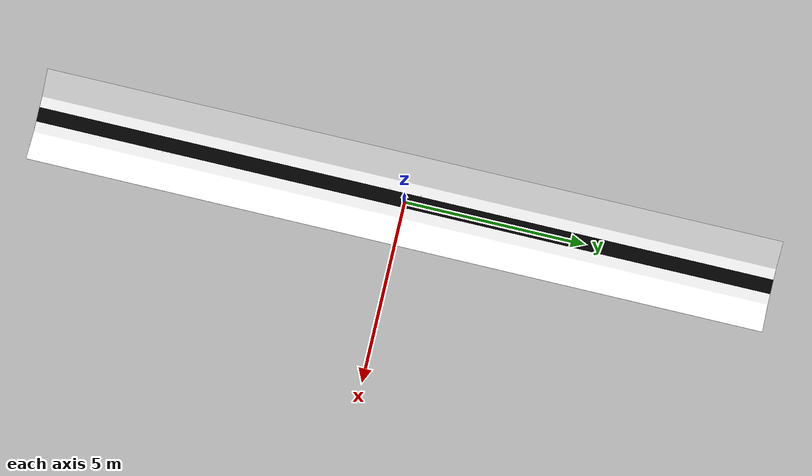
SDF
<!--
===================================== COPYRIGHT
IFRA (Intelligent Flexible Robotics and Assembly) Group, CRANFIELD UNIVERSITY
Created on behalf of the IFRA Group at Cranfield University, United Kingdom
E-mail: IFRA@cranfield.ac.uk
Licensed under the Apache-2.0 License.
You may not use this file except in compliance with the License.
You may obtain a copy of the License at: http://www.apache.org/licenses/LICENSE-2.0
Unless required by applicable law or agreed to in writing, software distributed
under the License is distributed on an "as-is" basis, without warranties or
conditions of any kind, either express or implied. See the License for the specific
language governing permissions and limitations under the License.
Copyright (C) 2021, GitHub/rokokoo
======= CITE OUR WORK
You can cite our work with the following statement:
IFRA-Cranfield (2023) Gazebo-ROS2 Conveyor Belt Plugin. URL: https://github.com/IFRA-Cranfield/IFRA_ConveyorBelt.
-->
<?xml version="1.0" ?>

<sdf version="1.4">

    <model name="conveyor_belt">

        <model name="conveyorbelt_fixed">

            <static>true</static>

            <link name="belt_visual">
                <visual name="visual">
                    <geometry>
                        <mesh>
                            <scale>1 1 1</scale>
                            <uri>model://conveyor_belt/meshes/larger_belt.dae</uri>
                        </mesh>
                    </geometry>
                </visual>
                <collision name="collision">
                    <origin xyz="0.0 0.0 0" rpy="0.0 0.0 0.0"/>
                    <geometry>
                        <mesh>
                            <scale>1 1 1</scale>
                            <uri>model://conveyor_belt/meshes/larger_belt.dae</uri>
                        </mesh>
                    </geometry>
                </collision>
            </link>

        </model>

        <model name="conveyorbelt_moving">

            <allow_auto_disable>0</allow_auto_disable>
            <static>false</static>

            <pose>0 0 0.741 0 0 0.0</pose>

            <link name="belt_moving">
                <inertial>
                    <mass>100.0</mass>
                    <inertia>
                        <ixx>0.0</ixx>
                        <ixy>0.0</ixy>
                        <ixz>0.0</ixz>
                        <iyy>0.0</iyy>
                        <iyz>0.0</iyz>
                        <izz>0.0</izz>
                    </inertia>
                </inertial>
                <collision name="belt_collision">
                    <geometry>
                        <box>
                            <size>0.4 20.2 0.00001</size>
                        </box>
                    </geometry>
                    <surface>
                        <friction>
                            <ode>
                                <mu>100.0</mu>
                                <mu2>100.0</mu2>
                            </ode>
                            <torsional>
                                <coefficient>1000.0</coefficient>
                                <patch_radius>0.1</patch_radius>
                            </torsional>
                        </friction>
                    </surface>
                </collision>
            </link>

        </model>

        <joint name="belt_joint" type="prismatic">
            <parent>conveyorbelt_fixed::belt_visual</parent>
            <child>conveyorbelt_moving::belt_moving</child>
            <axis>
                <xyz>0 1 0</xyz>
                <limit>
                    <lower>0.0</lower>
                    <upper>0.01</upper>
                </limit>
            </axis>
        </joint>

        <plugin name="ros2_conveyorbelt_plugin" filename="libros2_conveyorbelt_plugin.so" >
            <ros>
                <namespace></namespace>
            </ros>
            <max_velocity>1.0</max_velocity>
            <publish_rate>1000</publish_rate>
        </plugin>

    </model>

    <gazebo>
    <plugin filename="libROS2ConveyorBeltPlugin.so" name="ros2_conveyorbelt_plugin">
        <ros>
            <namespace></namespace>
        </ros>
        <max_velocity>0.2</max_velocity>
        <publish_rate>10</publish_rate>
    </plugin>
</gazebo>

</sdf>
